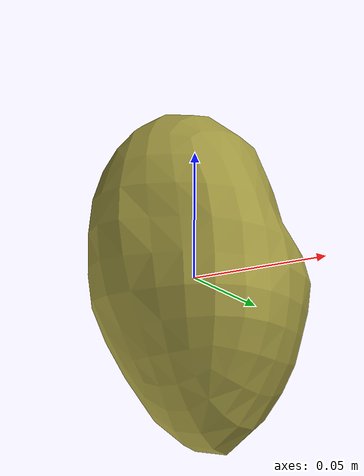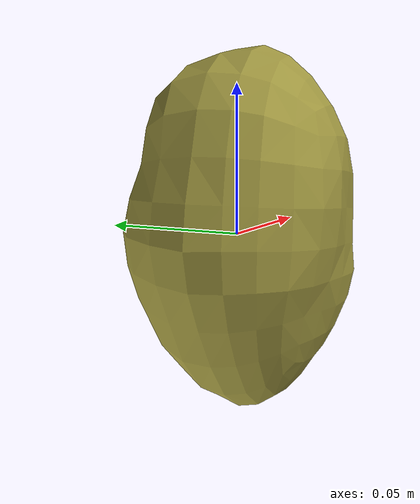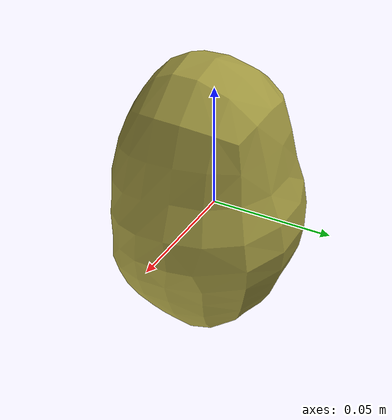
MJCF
<mujoco model="Potato_3">
  <compiler autolimits="true" boundmass="0.01" angle="radian"/>
  <default>
    <default class="/">
      <default class="__VISUAL_MJT__">
        <geom contype="0" conaffinity="0" group="0"/>
      </default>
      <default class="__STRUCTURAL_MJT__">
        <geom contype="8" conaffinity="15" group="4" friction="0.90000000000000002 0.90000000000000002 0.001" solref="0.025000000000000001 1" solimp="0.998 0.998 0.001"/>
      </default>
      <default class="__DYNAMIC_MJT__">
        <geom contype="1" conaffinity="15" group="4" friction="0.90000000000000002 0.90000000000000002 0.001" solref="0.025000000000000001 1" solimp="0.998 0.998 0.001"/>
      </default>
    </default>
  </default>
  <asset>
    <texture name="Potato1_Mat3" type="2d" file="Potato1_AlbedoTransparency.png"/>
    <material name="material_Potato1_Mat3" class="/" texture="Potato1_Mat3" specular="0.5" shininess="0.5" rgba="0.86029409999999995 0.84703200000000001 0.37954149999999998 1"/>
    <mesh name="Potato_3_potato_a3" class="/" file="Potato_3_potato_a3/Potato_3_potato_a3.obj" scale="1 1 1"/>
  </asset>
  <worldbody>
    <body name="Potato_3">
      <joint name="Potato_3_free" class="/" type="free" pos="0 0 0" axis="0 0 1" stiffness="0" range="0 0" armature="0" damping="0.10000000000000001" frictionloss="0"/>
      <body name="Potato_3_potato_a3" pos="0.0015200000000000001 0.00095 -0.0033999999999999998" quat="1 0 0 0">
        <geom name="Potato_3_potato_a3" class="__VISUAL_MJT__" type="mesh" material="material_Potato1_Mat3" shellinertia="true" mesh="Potato_3_potato_a3"/>
        <geom name="Potato_3_PrimitiveCollider_0" class="__DYNAMIC_MJT__" type="capsule" size="0.040314793586730957 0.021123528480529785" rgba="0 1 0 1" pos="0.0015185177326202393 -0.00094634015113115311 0.0034019378945231438" quat="1.4751396609986736e-06 0.99999999999891198 0 0"/>
      </body>
    </body>
  </worldbody>
</mujoco>
